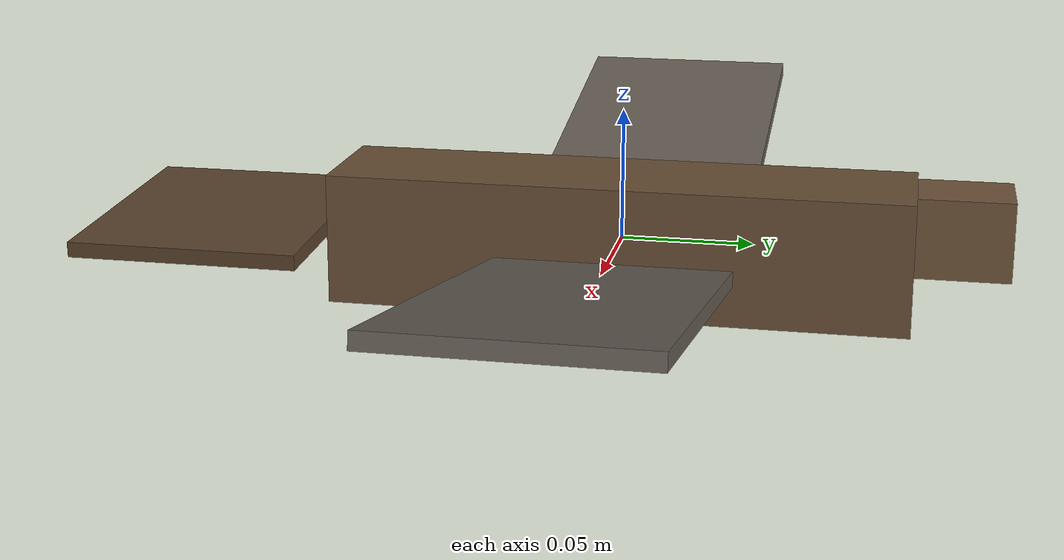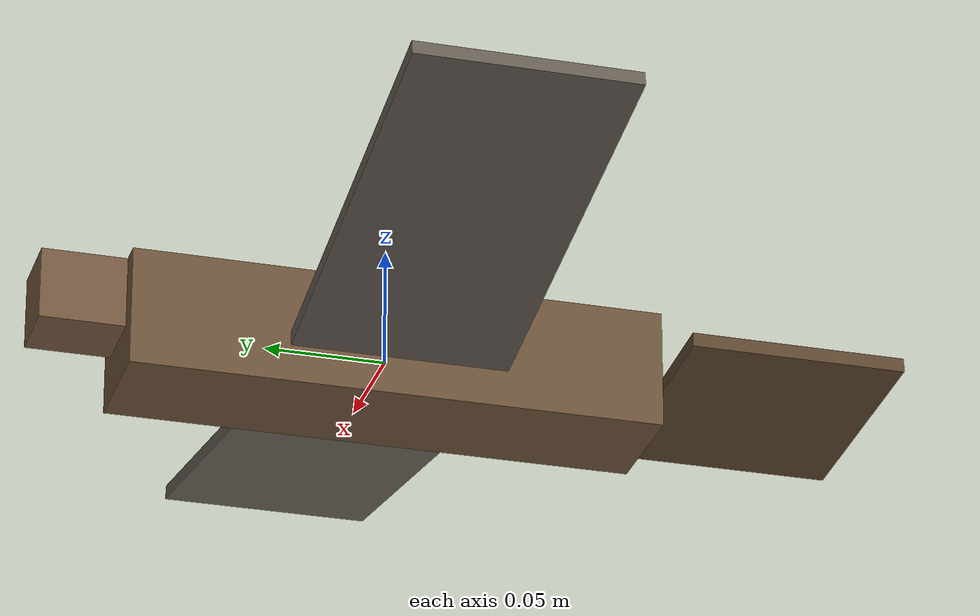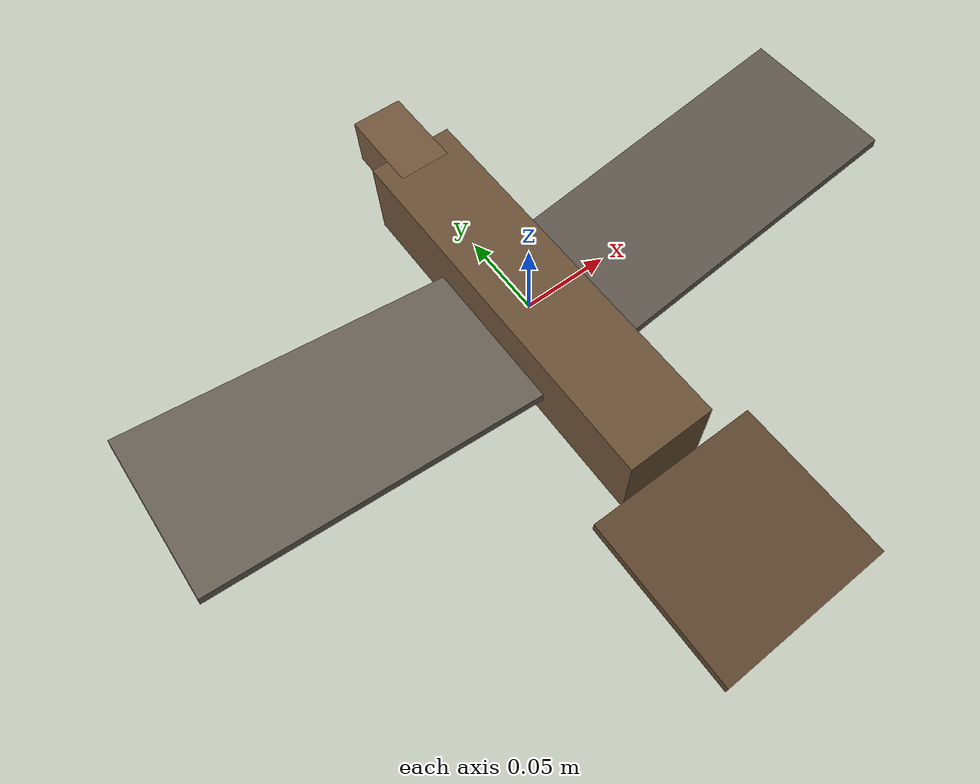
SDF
<?xml version="1.0" encoding="UTF-8"?>
<sdf version='1.9'>
  <model name='fpv_bird_decoy'>
    <static>true</static>
    <link name='base'>

      <!-- Fuselage: small elongated body, long axis on local Y (travel
           direction). 0.22 m nose-to-tail-root, 0.05 m wide, 0.05 m tall. -->
      <visual name='body_visual'>
        <pose>0 0 0 0 0 0</pose>
        <geometry>
          <box>
            <size>0.05 0.22 0.05</size>
          </box>
        </geometry>
        <material>
          <ambient>0.30 0.22 0.15 1</ambient>
          <diffuse>0.42 0.32 0.22 1</diffuse>
          <specular>0.08 0.07 0.06 1</specular>
        </material>
      </visual>

      <!-- Head/beak nub at the +Y (leading, travel-direction) end. -->
      <visual name='head_visual'>
        <pose>0 0.12 0.01 0 0 0</pose>
        <geometry>
          <box>
            <size>0.03 0.05 0.03</size>
          </box>
        </geometry>
        <material>
          <ambient>0.32 0.24 0.16 1</ambient>
          <diffuse>0.45 0.34 0.24 1</diffuse>
          <specular>0.08 0.07 0.06 1</specular>
        </material>
      </visual>

      <!-- Tail fan: flat, wide, thin box at the -Y (trailing) end, pitched
           a few degrees for a fanned-tail silhouette. -->
      <visual name='tail_visual'>
        <pose>0 -0.16 0 0 0.05 0</pose>
        <geometry>
          <box>
            <size>0.10 0.09 0.006</size>
          </box>
        </geometry>
        <material>
          <ambient>0.26 0.19 0.13 1</ambient>
          <diffuse>0.36 0.27 0.18 1</diffuse>
          <specular>0.06 0.05 0.05 1</specular>
        </material>
      </visual>

      <visual name='wing_left_visual'>
        <pose>-0.115 0 0.01 0 0.18 0</pose>
        <geometry>
          <box>
            <size>0.19 0.09 0.006</size>
          </box>
        </geometry>
        <material>
          <ambient>0.28 0.26 0.24 1</ambient>
          <diffuse>0.40 0.37 0.33 1</diffuse>
          <specular>0.06 0.06 0.06 1</specular>
        </material>
      </visual>
      <visual name='wing_right_visual'>
        <pose>0.115 0 0.01 0 -0.18 0</pose>
        <geometry>
          <box>
            <size>0.19 0.09 0.006</size>
          </box>
        </geometry>
        <material>
          <ambient>0.28 0.26 0.24 1</ambient>
          <diffuse>0.40 0.37 0.33 1</diffuse>
          <specular>0.06 0.06 0.06 1</specular>
        </material>
      </visual>

    </link>
  </model>
</sdf>
